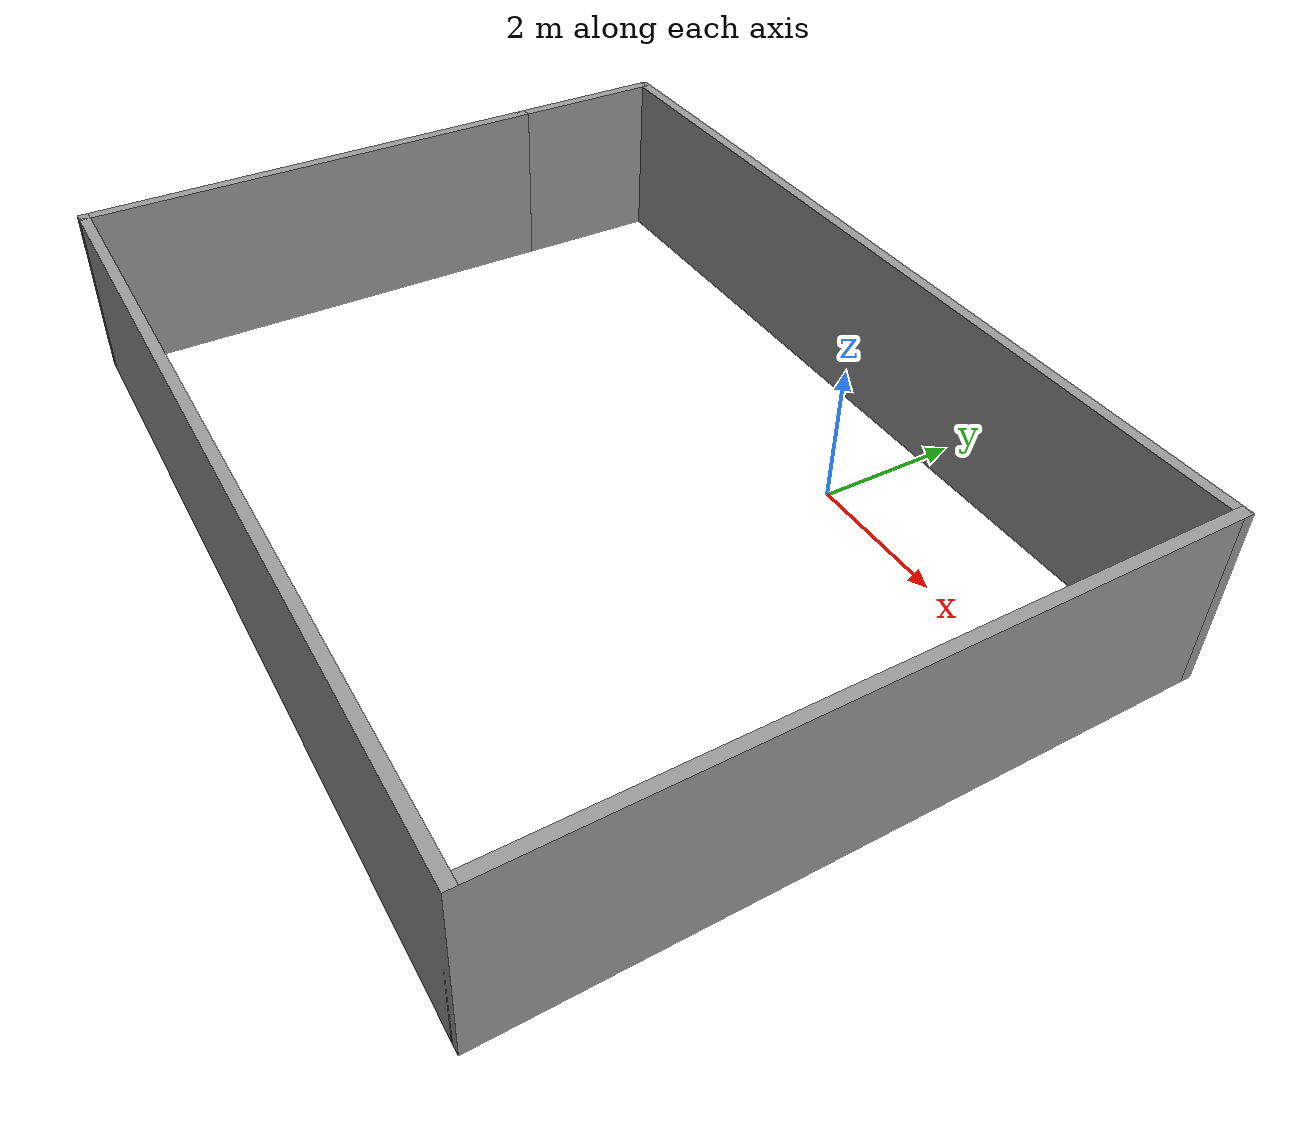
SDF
<?xml version='1.0'?>
<sdf version='1.6'>
  <model name='envir01'>
    <pose frame=''>-1.53146 -2.93365 0 0 -0 0</pose>
    <link name='Wall_3'>
      <collision name='Wall_3_Collision'>
        <geometry>
          <box>
            <size>7 0.15 2.5</size>
          </box>
        </geometry>
        <pose frame=''>0 0 1.25 0 -0 0</pose>
      </collision>
      <visual name='Wall_3_Visual'>
        <pose frame=''>0 0 1.25 0 -0 0</pose>
        <geometry>
          <box>
            <size>7 0.15 2.5</size>
          </box>
        </geometry>
        <material>
          <script>
            <uri>file://media/materials/scripts/gazebo.material</uri>
            <name>Gazebo/Grey</name>
          </script>
          <ambient>1 1 1 1</ambient>
        </material>
        <meta>
          <layer>0</layer>
        </meta>
      </visual>
      <pose frame=''>-6.05 -1.125 0 0 -0 -1.5708</pose>
    </link>
    <link name='Wall_4'>
      <collision name='Wall_4_Collision'>
        <geometry>
          <box>
            <size>12.25 0.15 2.5</size>
          </box>
        </geometry>
        <pose frame=''>0 0 1.25 0 -0 0</pose>
      </collision>
      <visual name='Wall_4_Visual'>
        <pose frame=''>0 0 1.25 0 -0 0</pose>
        <geometry>
          <box>
            <size>12.25 0.15 2.5</size>
          </box>
        </geometry>
        <material>
          <script>
            <uri>file://media/materials/scripts/gazebo.material</uri>
            <name>Gazebo/Grey</name>
          </script>
          <ambient>1 1 1 1</ambient>
        </material>
        <meta>
          <layer>0</layer>
        </meta>
      </visual>
      <pose frame=''>-0 -4.55 0 0 -0 0</pose>
    </link>
    <link name='Wall_5'>
      <collision name='Wall_5_Collision'>
        <geometry>
          <box>
            <size>9.25 0.15 2.5</size>
          </box>
        </geometry>
        <pose frame=''>0 0 1.25 0 -0 0</pose>
      </collision>
      <visual name='Wall_5_Visual'>
        <pose frame=''>0 0 1.25 0 -0 0</pose>
        <geometry>
          <box>
            <size>9.25 0.15 2.5</size>
          </box>
        </geometry>
        <material>
          <script>
            <uri>file://media/materials/scripts/gazebo.material</uri>
            <name>Gazebo/Grey</name>
          </script>
          <ambient>1 1 1 1</ambient>
        </material>
        <meta>
          <layer>0</layer>
        </meta>
      </visual>
      <pose frame=''>6.05 0 0 0 -0 1.5708</pose>
    </link>
    <link name='Wall_6'>
      <collision name='Wall_6_Collision'>
        <geometry>
          <box>
            <size>12.25 0.15 2.5</size>
          </box>
        </geometry>
        <pose frame=''>0 0 1.25 0 -0 0</pose>
      </collision>
      <visual name='Wall_6_Visual'>
        <pose frame=''>0 0 1.25 0 -0 0</pose>
        <geometry>
          <box>
            <size>12.25 0.15 2.5</size>
          </box>
        </geometry>
        <material>
          <script>
            <uri>file://media/materials/scripts/gazebo.material</uri>
            <name>Gazebo/Grey</name>
          </script>
          <ambient>1 1 1 1</ambient>
        </material>
        <meta>
          <layer>0</layer>
        </meta>
      </visual>
      <pose frame=''>-0 4.55 0 0 -0 3.14159</pose>
    </link>
    <link name='Wall_7'>
      <collision name='Wall_7_Collision'>
        <geometry>
          <box>
            <size>2.4 0.15 2.5</size>
          </box>
        </geometry>
        <pose frame=''>0 0 1.25 0 -0 0</pose>
      </collision>
      <visual name='Wall_7_Visual'>
        <pose frame=''>0 0 1.25 0 -0 0</pose>
        <geometry>
          <box>
            <size>2.4 0.15 2.5</size>
          </box>
        </geometry>
        <material>
          <script>
            <uri>file://media/materials/scripts/gazebo.material</uri>
            <name>Gazebo/Grey</name>
          </script>
          <ambient>1 1 1 1</ambient>
        </material>
        <meta>
          <layer>0</layer>
        </meta>
      </visual>
      <pose frame=''>-6.05 3.425 0 0 -0 -1.5708</pose>
    </link>
    <static>1</static>
  </model>
</sdf>
